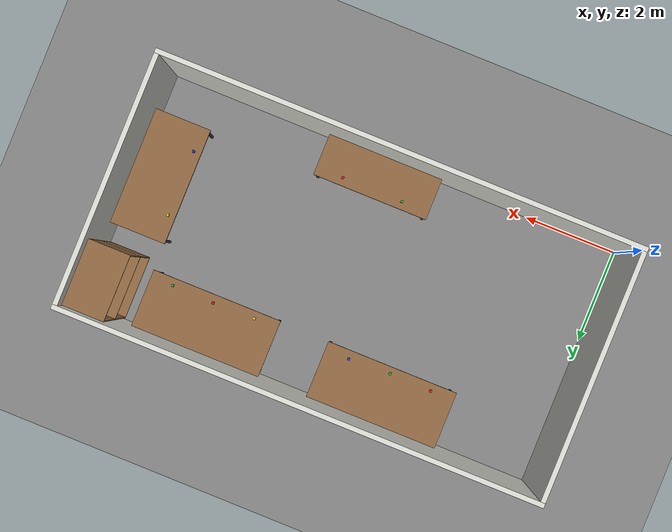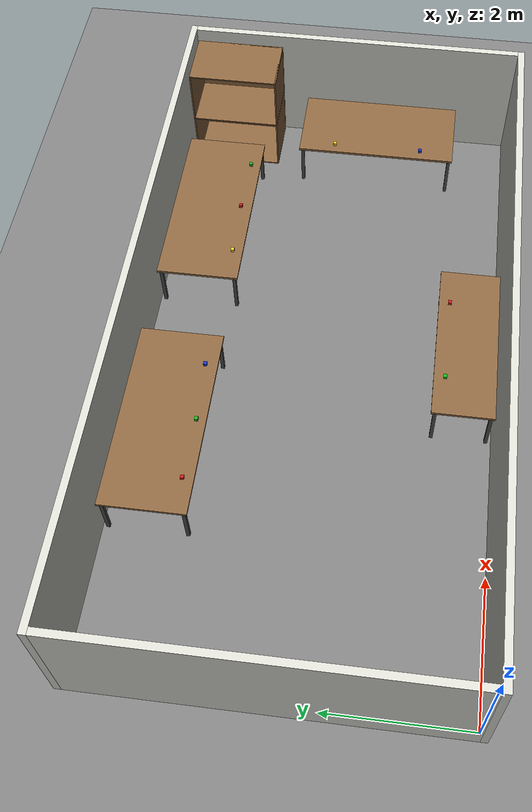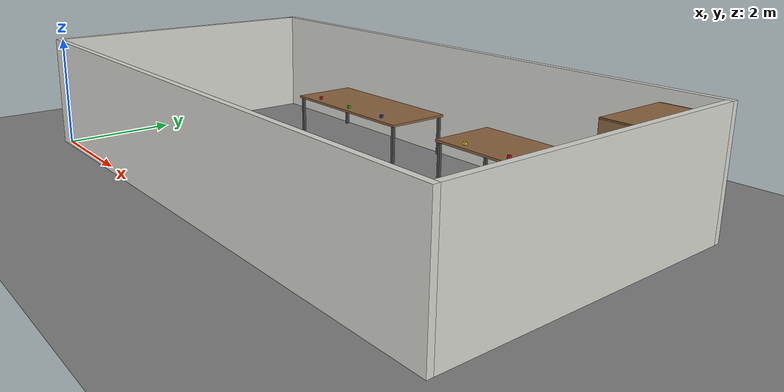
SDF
<sdf version="1.9">
 <world name="artc_lab">
  <physics type="ode">
   <max_step_size>0.001</max_step_size>
   <real_time_factor>1.0</real_time_factor>
   <real_time_update_rate>1000</real_time_update_rate>
  </physics>
  <plugin name="gz::sim::systems::Physics" filename="libgz-sim-physics-system.so"/>
  <plugin name="gz::sim::systems::UserCommands" filename="libgz-sim-user-commands-system.so"/>
  <plugin name="gz::sim::systems::SceneBroadcaster" filename="libgz-sim-scene-broadcaster-system.so"/>
  <plugin name="gz::sim::systems::Imu" filename="libgz-sim-imu-system.so"/>
  <plugin name="gz::sim::systems::Contact" filename="libgz-sim-contact-system.so"/>
  <plugin name="gz::sim::systems::ForceTorque" filename="libgz-sim-forcetorque-system.so"/>
  <scene><ambient>0.8 0.8 0.8</ambient><background>0.7 0.7 0.7</background><grid>false</grid></scene>
  <light type="directional" name="sun">
   <pose>5 2.6 10 0 0 0</pose>
   <diffuse>0.8 0.8 0.8 1</diffuse>
   <specular>0.1 0.1 0.1 1</specular>
   <direction>-0.3 0.2 -1</direction>
  </light>
  <model name="ground_plane">
   <static>true</static>
   <pose>5.0 2.6 0 0 0 0</pose>
   <link name="link">
    <collision name="collision"><geometry><plane><normal>0 0 1</normal></plane></geometry></collision>
    <visual name="visual">
     <geometry><plane><normal>0 0 1</normal><size>10.2 5.4</size></plane></geometry>
     <material><ambient>0.5 0.5 0.5 1</ambient><diffuse>0.5 0.5 0.5 1</diffuse></material>
    </visual>
   </link>
  </model>
  <model name="walls">
   <static>true</static>
   <link name="south">
    <pose>5.000 -0.050 1.000 0 0 0</pose>
    <collision name="south_collision"><geometry><box><size>10.200 0.100 2.000</size></box></geometry></collision>
    <visual name="south_visual">
     <geometry><box><size>10.200 0.100 2.000</size></box></geometry>
     <material><ambient>0.85 0.85 0.82 1</ambient><diffuse>0.85 0.85 0.82 1</diffuse></material>
    </visual>
   </link>
   <link name="north">
    <pose>5.000 5.250 1.000 0 0 0</pose>
    <collision name="north_collision"><geometry><box><size>10.200 0.100 2.000</size></box></geometry></collision>
    <visual name="north_visual">
     <geometry><box><size>10.200 0.100 2.000</size></box></geometry>
     <material><ambient>0.85 0.85 0.82 1</ambient><diffuse>0.85 0.85 0.82 1</diffuse></material>
    </visual>
   </link>
   <link name="west">
    <pose>-0.050 2.600 1.000 0 0 0</pose>
    <collision name="west_collision"><geometry><box><size>0.100 5.200 2.000</size></box></geometry></collision>
    <visual name="west_visual">
     <geometry><box><size>0.100 5.200 2.000</size></box></geometry>
     <material><ambient>0.85 0.85 0.82 1</ambient><diffuse>0.85 0.85 0.82 1</diffuse></material>
    </visual>
   </link>
   <link name="east">
    <pose>10.050 2.600 1.000 0 0 0</pose>
    <collision name="east_collision"><geometry><box><size>0.100 5.200 2.000</size></box></geometry></collision>
    <visual name="east_visual">
     <geometry><box><size>0.100 5.200 2.000</size></box></geometry>
     <material><ambient>0.85 0.85 0.82 1</ambient><diffuse>0.85 0.85 0.82 1</diffuse></material>
    </visual>
   </link>
  </model>
  <model name="table_north_west">
   <static>true</static>
   <link name="top">
    <pose>3.501 4.572 0.730 0 0 0</pose>
    <collision name="top_collision"><geometry><box><size>2.832 1.216 0.040</size></box></geometry></collision>
    <visual name="top_visual">
     <geometry><box><size>2.832 1.216 0.040</size></box></geometry>
     <material><ambient>0.55 0.4 0.25 1</ambient><diffuse>0.55 0.4 0.25 1</diffuse></material>
    </visual>
   </link>
   <link name="leg0">
    <pose>2.140 4.019 0.355 0 0 0</pose>
    <collision name="leg0_collision"><geometry><box><size>0.050 0.050 0.710</size></box></geometry></collision>
    <visual name="leg0_visual">
     <geometry><box><size>0.050 0.050 0.710</size></box></geometry>
     <material><ambient>0.3 0.3 0.3 1</ambient><diffuse>0.3 0.3 0.3 1</diffuse></material>
    </visual>
   </link>
   <link name="leg1">
    <pose>4.862 4.019 0.355 0 0 0</pose>
    <collision name="leg1_collision"><geometry><box><size>0.050 0.050 0.710</size></box></geometry></collision>
    <visual name="leg1_visual">
     <geometry><box><size>0.050 0.050 0.710</size></box></geometry>
     <material><ambient>0.3 0.3 0.3 1</ambient><diffuse>0.3 0.3 0.3 1</diffuse></material>
    </visual>
   </link>
   <link name="leg2">
    <pose>2.140 5.125 0.355 0 0 0</pose>
    <collision name="leg2_collision"><geometry><box><size>0.050 0.050 0.710</size></box></geometry></collision>
    <visual name="leg2_visual">
     <geometry><box><size>0.050 0.050 0.710</size></box></geometry>
     <material><ambient>0.3 0.3 0.3 1</ambient><diffuse>0.3 0.3 0.3 1</diffuse></material>
    </visual>
   </link>
   <link name="leg3">
    <pose>4.862 5.125 0.355 0 0 0</pose>
    <collision name="leg3_collision"><geometry><box><size>0.050 0.050 0.710</size></box></geometry></collision>
    <visual name="leg3_visual">
     <geometry><box><size>0.050 0.050 0.710</size></box></geometry>
     <material><ambient>0.3 0.3 0.3 1</ambient><diffuse>0.3 0.3 0.3 1</diffuse></material>
    </visual>
   </link>
  </model>
  <model name="table_north_east">
   <static>true</static>
   <link name="top">
    <pose>7.382 4.564 0.730 0 0 0</pose>
    <collision name="top_collision"><geometry><box><size>2.802 1.231 0.040</size></box></geometry></collision>
    <visual name="top_visual">
     <geometry><box><size>2.802 1.231 0.040</size></box></geometry>
     <material><ambient>0.55 0.4 0.25 1</ambient><diffuse>0.55 0.4 0.25 1</diffuse></material>
    </visual>
   </link>
   <link name="leg0">
    <pose>6.036 4.004 0.355 0 0 0</pose>
    <collision name="leg0_collision"><geometry><box><size>0.050 0.050 0.710</size></box></geometry></collision>
    <visual name="leg0_visual">
     <geometry><box><size>0.050 0.050 0.710</size></box></geometry>
     <material><ambient>0.3 0.3 0.3 1</ambient><diffuse>0.3 0.3 0.3 1</diffuse></material>
    </visual>
   </link>
   <link name="leg1">
    <pose>8.728 4.004 0.355 0 0 0</pose>
    <collision name="leg1_collision"><geometry><box><size>0.050 0.050 0.710</size></box></geometry></collision>
    <visual name="leg1_visual">
     <geometry><box><size>0.050 0.050 0.710</size></box></geometry>
     <material><ambient>0.3 0.3 0.3 1</ambient><diffuse>0.3 0.3 0.3 1</diffuse></material>
    </visual>
   </link>
   <link name="leg2">
    <pose>6.036 5.125 0.355 0 0 0</pose>
    <collision name="leg2_collision"><geometry><box><size>0.050 0.050 0.710</size></box></geometry></collision>
    <visual name="leg2_visual">
     <geometry><box><size>0.050 0.050 0.710</size></box></geometry>
     <material><ambient>0.3 0.3 0.3 1</ambient><diffuse>0.3 0.3 0.3 1</diffuse></material>
    </visual>
   </link>
   <link name="leg3">
    <pose>8.728 5.125 0.355 0 0 0</pose>
    <collision name="leg3_collision"><geometry><box><size>0.050 0.050 0.710</size></box></geometry></collision>
    <visual name="leg3_visual">
     <geometry><box><size>0.050 0.050 0.710</size></box></geometry>
     <material><ambient>0.3 0.3 0.3 1</ambient><diffuse>0.3 0.3 0.3 1</diffuse></material>
    </visual>
   </link>
  </model>
  <model name="table_east">
   <static>true</static>
   <link name="top">
    <pose>9.378 2.120 0.730 0 0 0</pose>
    <collision name="top_collision"><geometry><box><size>1.204 2.510 0.040</size></box></geometry></collision>
    <visual name="top_visual">
     <geometry><box><size>1.204 2.510 0.040</size></box></geometry>
     <material><ambient>0.55 0.4 0.25 1</ambient><diffuse>0.55 0.4 0.25 1</diffuse></material>
    </visual>
   </link>
   <link name="leg0">
    <pose>8.831 0.920 0.355 0 0 0</pose>
    <collision name="leg0_collision"><geometry><box><size>0.050 0.050 0.710</size></box></geometry></collision>
    <visual name="leg0_visual">
     <geometry><box><size>0.050 0.050 0.710</size></box></geometry>
     <material><ambient>0.3 0.3 0.3 1</ambient><diffuse>0.3 0.3 0.3 1</diffuse></material>
    </visual>
   </link>
   <link name="leg1">
    <pose>9.925 0.920 0.355 0 0 0</pose>
    <collision name="leg1_collision"><geometry><box><size>0.050 0.050 0.710</size></box></geometry></collision>
    <visual name="leg1_visual">
     <geometry><box><size>0.050 0.050 0.710</size></box></geometry>
     <material><ambient>0.3 0.3 0.3 1</ambient><diffuse>0.3 0.3 0.3 1</diffuse></material>
    </visual>
   </link>
   <link name="leg2">
    <pose>8.831 3.320 0.355 0 0 0</pose>
    <collision name="leg2_collision"><geometry><box><size>0.050 0.050 0.710</size></box></geometry></collision>
    <visual name="leg2_visual">
     <geometry><box><size>0.050 0.050 0.710</size></box></geometry>
     <material><ambient>0.3 0.3 0.3 1</ambient><diffuse>0.3 0.3 0.3 1</diffuse></material>
    </visual>
   </link>
   <link name="leg3">
    <pose>9.925 3.320 0.355 0 0 0</pose>
    <collision name="leg3_collision"><geometry><box><size>0.050 0.050 0.710</size></box></geometry></collision>
    <visual name="leg3_visual">
     <geometry><box><size>0.050 0.050 0.710</size></box></geometry>
     <material><ambient>0.3 0.3 0.3 1</ambient><diffuse>0.3 0.3 0.3 1</diffuse></material>
    </visual>
   </link>
  </model>
  <model name="table_south">
   <static>true</static>
   <link name="top">
    <pose>5.246 0.465 0.730 0 0 0</pose>
    <collision name="top_collision"><geometry><box><size>2.484 0.889 0.040</size></box></geometry></collision>
    <visual name="top_visual">
     <geometry><box><size>2.484 0.889 0.040</size></box></geometry>
     <material><ambient>0.55 0.4 0.25 1</ambient><diffuse>0.55 0.4 0.25 1</diffuse></material>
    </visual>
   </link>
   <link name="leg0">
    <pose>4.059 0.075 0.355 0 0 0</pose>
    <collision name="leg0_collision"><geometry><box><size>0.050 0.050 0.710</size></box></geometry></collision>
    <visual name="leg0_visual">
     <geometry><box><size>0.050 0.050 0.710</size></box></geometry>
     <material><ambient>0.3 0.3 0.3 1</ambient><diffuse>0.3 0.3 0.3 1</diffuse></material>
    </visual>
   </link>
   <link name="leg1">
    <pose>6.433 0.075 0.355 0 0 0</pose>
    <collision name="leg1_collision"><geometry><box><size>0.050 0.050 0.710</size></box></geometry></collision>
    <visual name="leg1_visual">
     <geometry><box><size>0.050 0.050 0.710</size></box></geometry>
     <material><ambient>0.3 0.3 0.3 1</ambient><diffuse>0.3 0.3 0.3 1</diffuse></material>
    </visual>
   </link>
   <link name="leg2">
    <pose>4.059 0.854 0.355 0 0 0</pose>
    <collision name="leg2_collision"><geometry><box><size>0.050 0.050 0.710</size></box></geometry></collision>
    <visual name="leg2_visual">
     <geometry><box><size>0.050 0.050 0.710</size></box></geometry>
     <material><ambient>0.3 0.3 0.3 1</ambient><diffuse>0.3 0.3 0.3 1</diffuse></material>
    </visual>
   </link>
   <link name="leg3">
    <pose>6.433 0.854 0.355 0 0 0</pose>
    <collision name="leg3_collision"><geometry><box><size>0.050 0.050 0.710</size></box></geometry></collision>
    <visual name="leg3_visual">
     <geometry><box><size>0.050 0.050 0.710</size></box></geometry>
     <material><ambient>0.3 0.3 0.3 1</ambient><diffuse>0.3 0.3 0.3 1</diffuse></material>
    </visual>
   </link>
  </model>
  <model name="cupboard">
   <static>true</static>
   <link name="bottom">
    <pose>9.541 4.484 0.010 0 0 0</pose>
    <collision name="bottom_collision"><geometry><box><size>0.878 1.391 0.020</size></box></geometry></collision>
    <visual name="bottom_visual">
     <geometry><box><size>0.878 1.391 0.020</size></box></geometry>
     <material><ambient>0.55 0.4 0.25 1</ambient><diffuse>0.55 0.4 0.25 1</diffuse></material>
    </visual>
   </link>
   <link name="middle">
    <pose>9.541 4.484 0.900 0 0 0</pose>
    <collision name="middle_collision"><geometry><box><size>0.878 1.391 0.020</size></box></geometry></collision>
    <visual name="middle_visual">
     <geometry><box><size>0.878 1.391 0.020</size></box></geometry>
     <material><ambient>0.55 0.4 0.25 1</ambient><diffuse>0.55 0.4 0.25 1</diffuse></material>
    </visual>
   </link>
   <link name="top">
    <pose>9.541 4.484 1.790 0 0 0</pose>
    <collision name="top_collision"><geometry><box><size>0.878 1.391 0.020</size></box></geometry></collision>
    <visual name="top_visual">
     <geometry><box><size>0.878 1.391 0.020</size></box></geometry>
     <material><ambient>0.55 0.4 0.25 1</ambient><diffuse>0.55 0.4 0.25 1</diffuse></material>
    </visual>
   </link>
   <link name="back">
    <pose>9.970 4.484 0.900 0 0 0</pose>
    <collision name="back_collision"><geometry><box><size>0.020 1.391 1.800</size></box></geometry></collision>
    <visual name="back_visual">
     <geometry><box><size>0.020 1.391 1.800</size></box></geometry>
     <material><ambient>0.55 0.4 0.25 1</ambient><diffuse>0.55 0.4 0.25 1</diffuse></material>
    </visual>
   </link>
   <link name="left">
    <pose>9.541 5.170 0.900 0 0 0</pose>
    <collision name="left_collision"><geometry><box><size>0.878 0.020 1.800</size></box></geometry></collision>
    <visual name="left_visual">
     <geometry><box><size>0.878 0.020 1.800</size></box></geometry>
     <material><ambient>0.55 0.4 0.25 1</ambient><diffuse>0.55 0.4 0.25 1</diffuse></material>
    </visual>
   </link>
   <link name="right">
    <pose>9.541 3.799 0.900 0 0 0</pose>
    <collision name="right_collision"><geometry><box><size>0.878 0.020 1.800</size></box></geometry></collision>
    <visual name="right_visual">
     <geometry><box><size>0.878 0.020 1.800</size></box></geometry>
     <material><ambient>0.55 0.4 0.25 1</ambient><diffuse>0.55 0.4 0.25 1</diffuse></material>
    </visual>
   </link>
  </model>
  <model name="cube_0">
   <pose>2.600 4.120 0.776 0 0 0</pose>
   <link name="link">
    <inertial>
     <mass>0.05</mass>
     <inertia>
      <ixx>2.083e-05</ixx>
      <iyy>2.083e-05</iyy>
      <izz>2.083e-05</izz>
      <ixy>0</ixy>
      <ixz>0</ixz>
      <iyz>0</iyz>
     </inertia>
    </inertial>
    <collision name="collision">
     <geometry><box><size>0.05 0.05 0.05</size></box></geometry>
     <surface><friction><ode><mu>1.0</mu><mu2>1.0</mu2></ode></friction></surface>
    </collision>
    <visual name="visual">
     <geometry><box><size>0.05 0.05 0.05</size></box></geometry>
     <material><ambient>0.8 0.1 0.1 1</ambient><diffuse>0.8 0.1 0.1 1</diffuse></material>
    </visual>
   </link>
  </model>
  <model name="cube_1">
   <pose>3.500 4.100 0.776 0 0 0</pose>
   <link name="link">
    <inertial>
     <mass>0.05</mass>
     <inertia>
      <ixx>2.083e-05</ixx>
      <iyy>2.083e-05</iyy>
      <izz>2.083e-05</izz>
      <ixy>0</ixy>
      <ixz>0</ixz>
      <iyz>0</iyz>
     </inertia>
    </inertial>
    <collision name="collision">
     <geometry><box><size>0.05 0.05 0.05</size></box></geometry>
     <surface><friction><ode><mu>1.0</mu><mu2>1.0</mu2></ode></friction></surface>
    </collision>
    <visual name="visual">
     <geometry><box><size>0.05 0.05 0.05</size></box></geometry>
     <material><ambient>0.1 0.7 0.1 1</ambient><diffuse>0.1 0.7 0.1 1</diffuse></material>
    </visual>
   </link>
  </model>
  <model name="cube_2">
   <pose>4.400 4.140 0.776 0 0 0</pose>
   <link name="link">
    <inertial>
     <mass>0.05</mass>
     <inertia>
      <ixx>2.083e-05</ixx>
      <iyy>2.083e-05</iyy>
      <izz>2.083e-05</izz>
      <ixy>0</ixy>
      <ixz>0</ixz>
      <iyz>0</iyz>
     </inertia>
    </inertial>
    <collision name="collision">
     <geometry><box><size>0.05 0.05 0.05</size></box></geometry>
     <surface><friction><ode><mu>1.0</mu><mu2>1.0</mu2></ode></friction></surface>
    </collision>
    <visual name="visual">
     <geometry><box><size>0.05 0.05 0.05</size></box></geometry>
     <material><ambient>0.1 0.2 0.8 1</ambient><diffuse>0.1 0.2 0.8 1</diffuse></material>
    </visual>
   </link>
  </model>
  <model name="cube_3">
   <pose>6.500 4.100 0.776 0 0 0</pose>
   <link name="link">
    <inertial>
     <mass>0.05</mass>
     <inertia>
      <ixx>2.083e-05</ixx>
      <iyy>2.083e-05</iyy>
      <izz>2.083e-05</izz>
      <ixy>0</ixy>
      <ixz>0</ixz>
      <iyz>0</iyz>
     </inertia>
    </inertial>
    <collision name="collision">
     <geometry><box><size>0.05 0.05 0.05</size></box></geometry>
     <surface><friction><ode><mu>1.0</mu><mu2>1.0</mu2></ode></friction></surface>
    </collision>
    <visual name="visual">
     <geometry><box><size>0.05 0.05 0.05</size></box></geometry>
     <material><ambient>0.9 0.8 0.1 1</ambient><diffuse>0.9 0.8 0.1 1</diffuse></material>
    </visual>
   </link>
  </model>
  <model name="cube_4">
   <pose>7.400 4.120 0.776 0 0 0</pose>
   <link name="link">
    <inertial>
     <mass>0.05</mass>
     <inertia>
      <ixx>2.083e-05</ixx>
      <iyy>2.083e-05</iyy>
      <izz>2.083e-05</izz>
      <ixy>0</ixy>
      <ixz>0</ixz>
      <iyz>0</iyz>
     </inertia>
    </inertial>
    <collision name="collision">
     <geometry><box><size>0.05 0.05 0.05</size></box></geometry>
     <surface><friction><ode><mu>1.0</mu><mu2>1.0</mu2></ode></friction></surface>
    </collision>
    <visual name="visual">
     <geometry><box><size>0.05 0.05 0.05</size></box></geometry>
     <material><ambient>0.8 0.1 0.1 1</ambient><diffuse>0.8 0.1 0.1 1</diffuse></material>
    </visual>
   </link>
  </model>
  <model name="cube_5">
   <pose>8.300 4.100 0.776 0 0 0</pose>
   <link name="link">
    <inertial>
     <mass>0.05</mass>
     <inertia>
      <ixx>2.083e-05</ixx>
      <iyy>2.083e-05</iyy>
      <izz>2.083e-05</izz>
      <ixy>0</ixy>
      <ixz>0</ixz>
      <iyz>0</iyz>
     </inertia>
    </inertial>
    <collision name="collision">
     <geometry><box><size>0.05 0.05 0.05</size></box></geometry>
     <surface><friction><ode><mu>1.0</mu><mu2>1.0</mu2></ode></friction></surface>
    </collision>
    <visual name="visual">
     <geometry><box><size>0.05 0.05 0.05</size></box></geometry>
     <material><ambient>0.1 0.7 0.1 1</ambient><diffuse>0.1 0.7 0.1 1</diffuse></material>
    </visual>
   </link>
  </model>
  <model name="cube_6">
   <pose>8.930 1.400 0.776 0 0 0</pose>
   <link name="link">
    <inertial>
     <mass>0.05</mass>
     <inertia>
      <ixx>2.083e-05</ixx>
      <iyy>2.083e-05</iyy>
      <izz>2.083e-05</izz>
      <ixy>0</ixy>
      <ixz>0</ixz>
      <iyz>0</iyz>
     </inertia>
    </inertial>
    <collision name="collision">
     <geometry><box><size>0.05 0.05 0.05</size></box></geometry>
     <surface><friction><ode><mu>1.0</mu><mu2>1.0</mu2></ode></friction></surface>
    </collision>
    <visual name="visual">
     <geometry><box><size>0.05 0.05 0.05</size></box></geometry>
     <material><ambient>0.1 0.2 0.8 1</ambient><diffuse>0.1 0.2 0.8 1</diffuse></material>
    </visual>
   </link>
  </model>
  <model name="cube_7">
   <pose>8.930 2.800 0.776 0 0 0</pose>
   <link name="link">
    <inertial>
     <mass>0.05</mass>
     <inertia>
      <ixx>2.083e-05</ixx>
      <iyy>2.083e-05</iyy>
      <izz>2.083e-05</izz>
      <ixy>0</ixy>
      <ixz>0</ixz>
      <iyz>0</iyz>
     </inertia>
    </inertial>
    <collision name="collision">
     <geometry><box><size>0.05 0.05 0.05</size></box></geometry>
     <surface><friction><ode><mu>1.0</mu><mu2>1.0</mu2></ode></friction></surface>
    </collision>
    <visual name="visual">
     <geometry><box><size>0.05 0.05 0.05</size></box></geometry>
     <material><ambient>0.9 0.8 0.1 1</ambient><diffuse>0.9 0.8 0.1 1</diffuse></material>
    </visual>
   </link>
  </model>
  <model name="cube_8">
   <pose>4.600 0.750 0.776 0 0 0</pose>
   <link name="link">
    <inertial>
     <mass>0.05</mass>
     <inertia>
      <ixx>2.083e-05</ixx>
      <iyy>2.083e-05</iyy>
      <izz>2.083e-05</izz>
      <ixy>0</ixy>
      <ixz>0</ixz>
      <iyz>0</iyz>
     </inertia>
    </inertial>
    <collision name="collision">
     <geometry><box><size>0.05 0.05 0.05</size></box></geometry>
     <surface><friction><ode><mu>1.0</mu><mu2>1.0</mu2></ode></friction></surface>
    </collision>
    <visual name="visual">
     <geometry><box><size>0.05 0.05 0.05</size></box></geometry>
     <material><ambient>0.1 0.7 0.1 1</ambient><diffuse>0.1 0.7 0.1 1</diffuse></material>
    </visual>
   </link>
  </model>
  <model name="cube_9">
   <pose>5.900 0.750 0.776 0 0 0</pose>
   <link name="link">
    <inertial>
     <mass>0.05</mass>
     <inertia>
      <ixx>2.083e-05</ixx>
      <iyy>2.083e-05</iyy>
      <izz>2.083e-05</izz>
      <ixy>0</ixy>
      <ixz>0</ixz>
      <iyz>0</iyz>
     </inertia>
    </inertial>
    <collision name="collision">
     <geometry><box><size>0.05 0.05 0.05</size></box></geometry>
     <surface><friction><ode><mu>1.0</mu><mu2>1.0</mu2></ode></friction></surface>
    </collision>
    <visual name="visual">
     <geometry><box><size>0.05 0.05 0.05</size></box></geometry>
     <material><ambient>0.8 0.1 0.1 1</ambient><diffuse>0.8 0.1 0.1 1</diffuse></material>
    </visual>
   </link>
  </model>
 </world>
</sdf>
